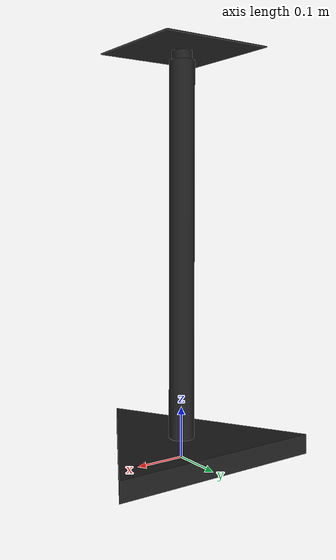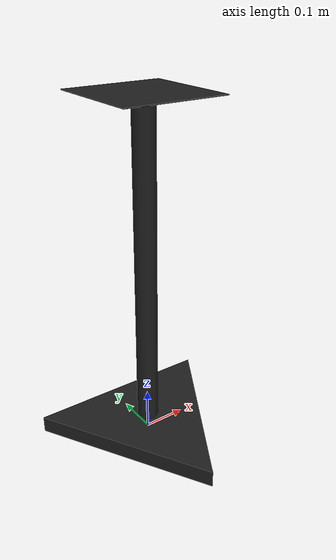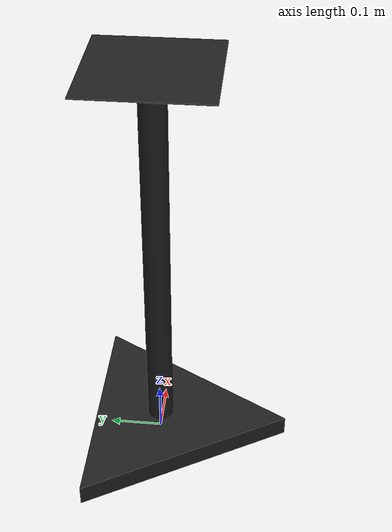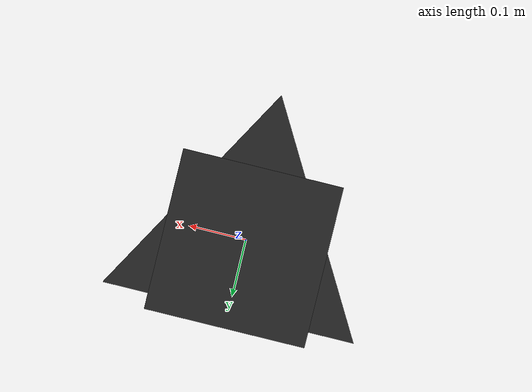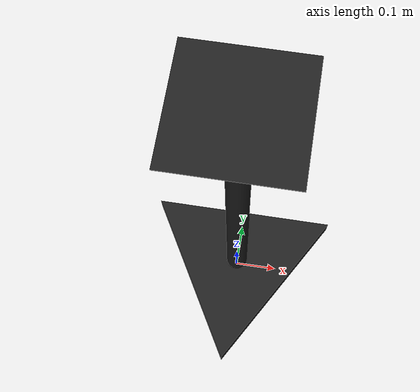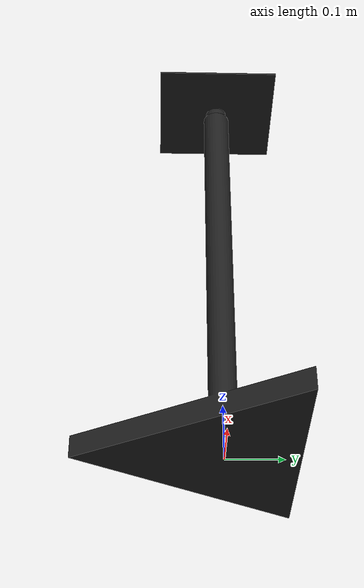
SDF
<?xml version="1.0" ?>
<sdf version="1.5">
  <model name="stand">
    <link name="head">
      <visual name="visual">
        <geometry>
          <mesh>
            <uri>model://stand/meshes/head.stl</uri>
            <scale>0.001 0.001 0.001</scale>
          </mesh>
        </geometry>
        <material>
          <script>
            <uri>file://media/materials/scripts/gazebo.material</uri>
            <name>Gazebo/Black</name>
          </script>
          <ambient>1 1 1 1</ambient>
        </material>
      </visual>
      <collision name="collision">
        <geometry>
          <mesh>
            <uri>model://stand/meshes/head.stl</uri>
            <scale>0.001 0.001 0.001</scale>
          </mesh>
        </geometry>
      </collision>
      <pose>0 0 0.8 0 0 0</pose>
    </link>

    <link name="base">
      <visual name="visual">
        <geometry>
          <mesh>
            <uri>model://stand/meshes/base.stl</uri>
            <scale>0.001 0.001 0.001</scale>
          </mesh>
        </geometry>
        <material>
          <script>
            <uri>file://media/materials/scripts/gazebo.material</uri>
            <name>Gazebo/Black</name>
          </script>
          <ambient>1 1 1 1</ambient>
        </material>
      </visual>
      <collision name="collision">
        <geometry>
          <mesh>
            <uri>model://stand/meshes/base.stl</uri>
            <scale>0.001 0.001 0.001</scale>
          </mesh>
        </geometry>
      </collision>
      <pose>0 0 0 0 0 0</pose>
    </link>
    <static>1</static>
  </model>
</sdf>
